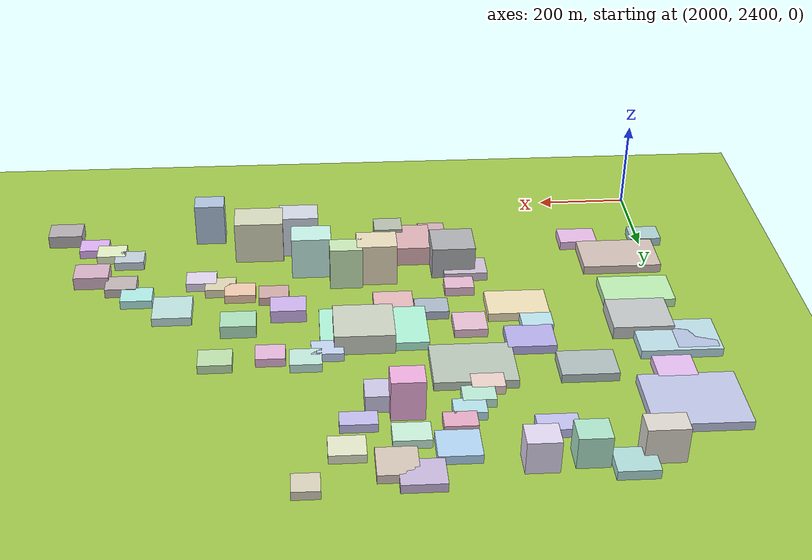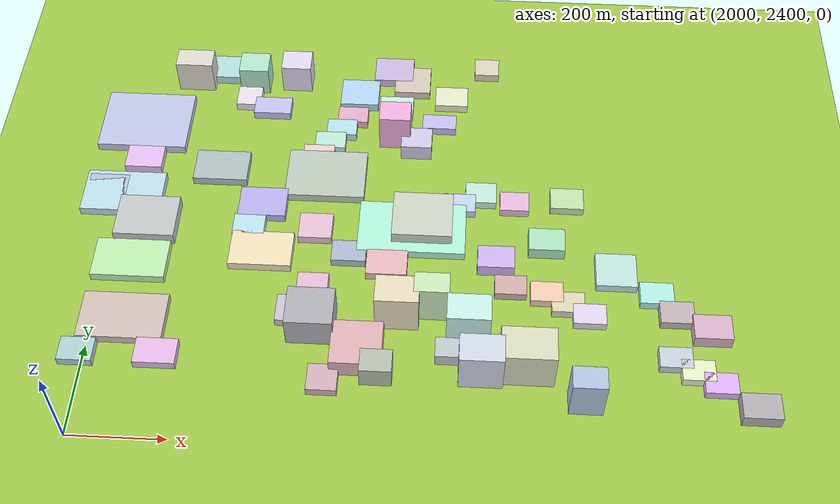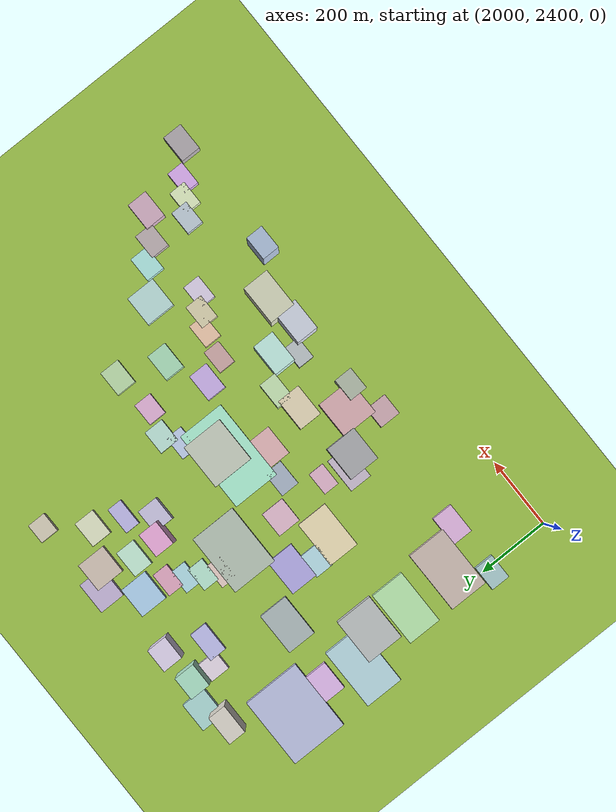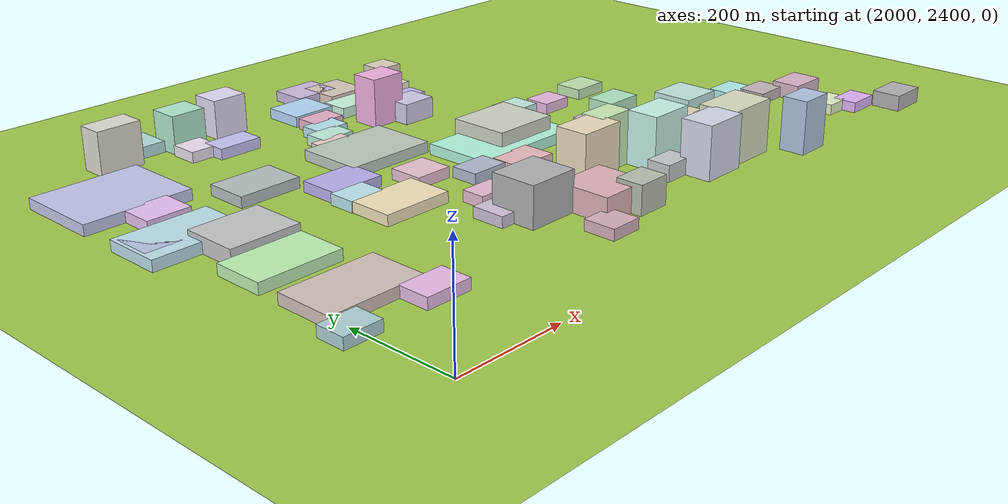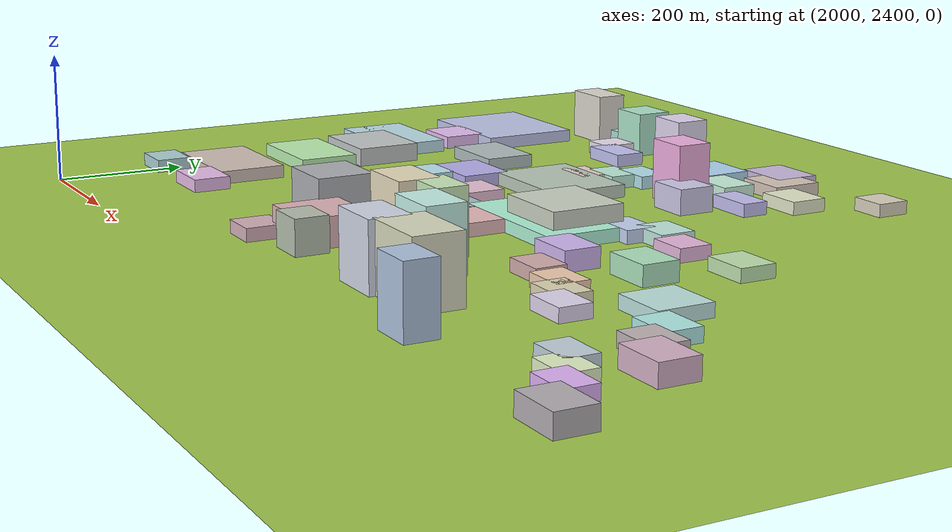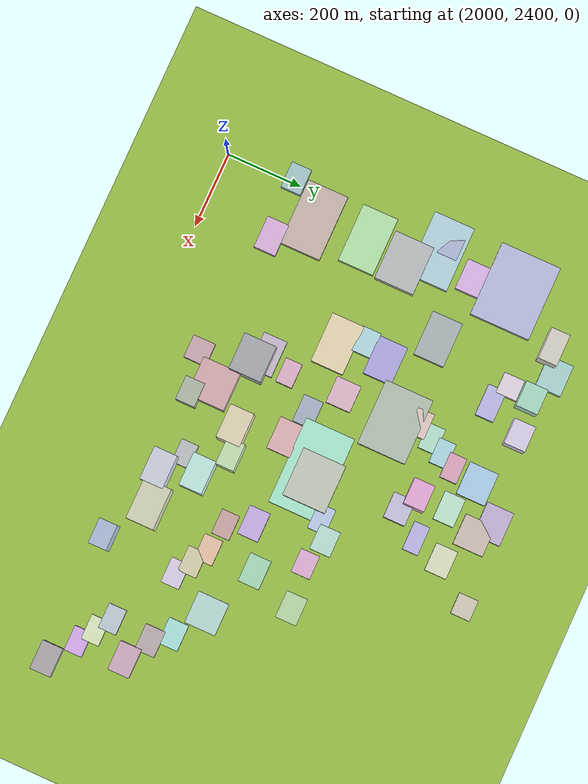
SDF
<sdf version="1.9">
 <world name="city_map">
  <model name="ground_plane">
   <static>1</static>
   <link name="link">
    <collision name="collision">
     <geometry><plane><normal>0 0 1</normal><size>11000 11000</size></plane></geometry>
    </collision>
    <visual name="visual">
     <geometry><plane><normal>0 0 1</normal><size>11000 11000</size></plane></geometry>
     <material>
      <ambient>0.551 0.712 0.210 1</ambient>
      <diffuse>0.651 0.812 0.310 1</diffuse>
      <specular>0.1 0.1 0.05 1</specular>
     </material>
    </visual>
   </link>
  </model>
  <model name="building_440611747">
   <static>1</static>
   <pose>2021.1025815786031 3198.5522960508947 10.0 0 0 0</pose>
   <link name="link">
    <collision name="collision">
     <geometry><box><size>197.5723558998394 159.24059999956341 20</size></box></geometry>
    </collision>
    <visual name="visual">
     <cast_shadows>false</cast_shadows>
     <geometry><box><size>197.5723558998394 159.24059999956341 20</size></box></geometry>
     <material>
      <ambient>0.681 0.703 0.843 1</ambient>
      <diffuse>0.781 0.803 0.943 1</diffuse>
      <specular>0.234 0.241 0.283 1</specular>
      <emissive>0.01 0.01 0.01 1</emissive>
     </material>
    </visual>
   </link>
  </model>
  <model name="building_433189715">
   <static>1</static>
   <pose>2639.7296116278594 2919.7608048342804 10.0 0 0 0</pose>
   <link name="link">
    <collision name="collision">
     <geometry><box><size>228.48471252296406 131.73479999991855 20</size></box></geometry>
    </collision>
    <visual name="visual">
     <cast_shadows>false</cast_shadows>
     <geometry><box><size>228.48471252296406 131.73479999991855 20</size></box></geometry>
     <material>
      <ambient>0.618 0.893 0.780 1</ambient>
      <diffuse>0.718 0.993 0.880 1</diffuse>
      <specular>0.215 0.298 0.264 1</specular>
      <emissive>0.01 0.01 0.01 1</emissive>
     </material>
    </visual>
   </link>
  </model>
  <model name="building_240721121">
   <static>1</static>
   <pose>2443.9631355852266 3059.673498067618 10.0 0 0 0</pose>
   <link name="link">
    <collision name="collision">
     <geometry><box><size>173.12924048401652 128.52690000028844 20</size></box></geometry>
    </collision>
    <visual name="visual">
     <cast_shadows>false</cast_shadows>
     <geometry><box><size>173.12924048401652 128.52690000028844 20</size></box></geometry>
     <material>
      <ambient>0.659 0.717 0.660 1</ambient>
      <diffuse>0.759 0.817 0.760 1</diffuse>
      <specular>0.228 0.245 0.228 1</specular>
      <emissive>0.01 0.01 0.01 1</emissive>
     </material>
    </visual>
   </link>
  </model>
  <model name="building_765505133">
   <static>1</static>
   <pose>2065.329270756325 2665.938776166225 10.0 0 0 0</pose>
   <link name="link">
    <collision name="collision">
     <geometry><box><size>174.52529999993516 108.52097290318989 20</size></box></geometry>
    </collision>
    <visual name="visual">
     <cast_shadows>false</cast_shadows>
     <geometry><box><size>174.52529999993516 108.52097290318989 20</size></box></geometry>
     <material>
      <ambient>0.747 0.680 0.644 1</ambient>
      <diffuse>0.847 0.780 0.744 1</diffuse>
      <specular>0.254 0.234 0.223 1</specular>
      <emissive>0.01 0.01 0.01 1</emissive>
     </material>
    </visual>
   </link>
  </model>
  <model name="building_233373308">
   <static>1</static>
   <pose>2006.5125984201939 2987.8699998156476 10.0 0 0 0</pose>
   <link name="link">
    <collision name="collision">
     <geometry><box><size>171.99449999954197 108.00716915777797 20</size></box></geometry>
    </collision>
    <visual name="visual">
     <cast_shadows>false</cast_shadows>
     <geometry><box><size>171.99449999954197 108.00716915777797 20</size></box></geometry>
     <material>
      <ambient>0.661 0.802 0.843 1</ambient>
      <diffuse>0.761 0.902 0.943 1</diffuse>
      <specular>0.228 0.270 0.283 1</specular>
      <emissive>0.01 0.01 0.01 1</emissive>
     </material>
    </visual>
   </link>
  </model>
  <model name="building_52770543">
   <static>1</static>
   <pose>2054.8442932073212 2809.9714088579435 10.0 0 0 0</pose>
   <link name="link">
    <collision name="collision">
     <geometry><box><size>154.56811779040694 94.84950000029357 20</size></box></geometry>
    </collision>
    <visual name="visual">
     <cast_shadows>false</cast_shadows>
     <geometry><box><size>154.56811779040694 94.84950000029357 20</size></box></geometry>
     <material>
      <ambient>0.667 0.869 0.627 1</ambient>
      <diffuse>0.767 0.969 0.727 1</diffuse>
      <specular>0.230 0.291 0.218 1</specular>
      <emissive>0.01 0.01 0.01 1</emissive>
     </material>
    </visual>
   </link>
  </model>
  <model name="building_142572939">
   <static>1</static>
   <pose>2661.4101324309618 2936.3021889163683 23.030599403451625 0 0 0</pose>
   <link name="link">
    <collision name="collision">
     <geometry><box><size>127.88761883979006 114.46319999998877 46.06119880690325</size></box></geometry>
    </collision>
    <visual name="visual">
     <cast_shadows>false</cast_shadows>
     <geometry><box><size>127.88761883979006 114.46319999998877 46.06119880690325</size></box></geometry>
     <material>
      <ambient>0.727 0.756 0.693 1</ambient>
      <diffuse>0.827 0.856 0.793 1</diffuse>
      <specular>0.248 0.257 0.238 1</specular>
      <emissive>0.01 0.01 0.01 1</emissive>
     </material>
    </visual>
   </link>
  </model>
  <model name="building_218203432">
   <static>1</static>
   <pose>2071.7927476553027 2916.532067912767 14.547962558986605 0 0 0</pose>
   <link name="link">
    <collision name="collision">
     <geometry><box><size>129.32610000016354 104.91038622711318 29.09592511797321</size></box></geometry>
    </collision>
    <visual name="visual">
     <cast_shadows>false</cast_shadows>
     <geometry><box><size>129.32610000016354 104.91038622711318 29.09592511797321</size></box></geometry>
     <material>
      <ambient>0.686 0.703 0.706 1</ambient>
      <diffuse>0.786 0.803 0.806 1</diffuse>
      <specular>0.236 0.241 0.242 1</specular>
      <emissive>0.01 0.01 0.01 1</emissive>
     </material>
    </visual>
   </link>
  </model>
  <model name="building_877774854">
   <static>1</static>
   <pose>2325.0134875804156 2848.2070413704073 10.0 0 0 0</pose>
   <link name="link">
    <collision name="collision">
     <geometry><box><size>132.11557564653737 86.90190000048403 20</size></box></geometry>
    </collision>
    <visual name="visual">
     <cast_shadows>false</cast_shadows>
     <geometry><box><size>132.11557564653737 86.90190000048403 20</size></box></geometry>
     <material>
      <ambient>0.877 0.817 0.660 1</ambient>
      <diffuse>0.977 0.917 0.760 1</diffuse>
      <specular>0.293 0.275 0.228 1</specular>
      <emissive>0.01 0.01 0.01 1</emissive>
     </material>
    </visual>
   </link>
  </model>
  <model name="building_999807764">
   <static>1</static>
   <pose>2545.0848512974344 2609.9748507605386 22.5 0 0 0</pose>
   <link name="link">
    <collision name="collision">
     <geometry><box><size>103.18559999991095 100.3134536221856 45.0</size></box></geometry>
    </collision>
    <visual name="visual">
     <cast_shadows>false</cast_shadows>
     <geometry><box><size>103.18559999991095 100.3134536221856 45.0</size></box></geometry>
     <material>
      <ambient>0.802 0.627 0.648 1</ambient>
      <diffuse>0.902 0.727 0.748 1</diffuse>
      <specular>0.271 0.218 0.224 1</specular>
      <emissive>0.01 0.01 0.01 1</emissive>
     </material>
    </visual>
   </link>
  </model>
  <model name="building_507207006">
   <static>1</static>
   <pose>2210.736748075368 3071.7509529611184 10.0 0 0 0</pose>
   <link name="link">
    <collision name="collision">
     <geometry><box><size>118.43446345562413 81.02999999969285 20</size></box></geometry>
    </collision>
    <visual name="visual">
     <cast_shadows>false</cast_shadows>
     <geometry><box><size>118.43446345562413 81.02999999969285 20</size></box></geometry>
     <material>
      <ambient>0.620 0.674 0.677 1</ambient>
      <diffuse>0.720 0.774 0.777 1</diffuse>
      <specular>0.216 0.232 0.233 1</specular>
      <emissive>0.01 0.01 0.01 1</emissive>
     </material>
    </visual>
   </link>
  </model>
  <model name="building_398476192">
   <static>1</static>
   <pose>2448.341518978277 2672.5574598121566 37.15671456053698 0 0 0</pose>
   <link name="link">
    <collision name="collision">
     <geometry><box><size>96.50339999990365 86.31847992660154 74.31342912107397</size></box></geometry>
    </collision>
    <visual name="visual">
     <cast_shadows>false</cast_shadows>
     <geometry><box><size>96.50339999990365 86.31847992660154 74.31342912107397</size></box></geometry>
     <material>
      <ambient>0.609 0.617 0.631 1</ambient>
      <diffuse>0.709 0.717 0.731 1</diffuse>
      <specular>0.213 0.215 0.219 1</specular>
      <emissive>0.01 0.01 0.01 1</emissive>
     </material>
    </visual>
   </link>
  </model>
  <model name="building_892319339">
   <static>1</static>
   <pose>2882.904034262728 2591.124476510062 49.5 0 0 0</pose>
   <link name="link">
    <collision name="collision">
     <geometry><box><size>108.92089593998533 72.99359999963428 99.0</size></box></geometry>
    </collision>
    <visual name="visual">
     <cast_shadows>false</cast_shadows>
     <geometry><box><size>108.92089593998533 72.99359999963428 99.0</size></box></geometry>
     <material>
      <ambient>0.779 0.790 0.678 1</ambient>
      <diffuse>0.879 0.890 0.778 1</diffuse>
      <specular>0.264 0.267 0.233 1</specular>
      <emissive>0.01 0.01 0.01 1</emissive>
     </material>
    </visual>
   </link>
  </model>
  <model name="building_639151474">
   <static>1</static>
   <pose>2313.9686368079538 2973.969334715789 10.0 0 0 0</pose>
   <link name="link">
    <collision name="collision">
     <geometry><box><size>102.53343533996022 76.3457999993733 20</size></box></geometry>
    </collision>
    <visual name="visual">
     <cast_shadows>false</cast_shadows>
     <geometry><box><size>102.53343533996022 76.3457999993733 20</size></box></geometry>
     <material>
      <ambient>0.646 0.617 0.859 1</ambient>
      <diffuse>0.746 0.717 0.959 1</diffuse>
      <specular>0.224 0.215 0.288 1</specular>
      <emissive>0.01 0.01 0.01 1</emissive>
     </material>
    </visual>
   </link>
  </model>
  <model name="building_354952649">
   <static>1</static>
   <pose>3069.1871280515857 2829.4343334186233 10.0 0 0 0</pose>
   <link name="link">
    <collision name="collision">
     <geometry><box><size>84.88464732057672 82.14000000004518 20</size></box></geometry>
    </collision>
    <visual name="visual">
     <cast_shadows>false</cast_shadows>
     <geometry><box><size>84.88464732057672 82.14000000004518 20</size></box></geometry>
     <material>
      <ambient>0.679 0.825 0.808 1</ambient>
      <diffuse>0.779 0.925 0.908 1</diffuse>
      <specular>0.234 0.278 0.272 1</specular>
      <emissive>0.01 0.01 0.01 1</emissive>
     </material>
    </visual>
   </link>
  </model>
  <model name="building_891922350">
   <static>1</static>
   <pose>2500.3131879932403 3308.432072423034 10.0 0 0 0</pose>
   <link name="link">
    <collision name="collision">
     <geometry><box><size>86.57999999987709 76.93863343203256 20</size></box></geometry>
    </collision>
    <visual name="visual">
     <cast_shadows>false</cast_shadows>
     <geometry><box><size>86.57999999987709 76.93863343203256 20</size></box></geometry>
     <material>
      <ambient>0.627 0.773 0.892 1</ambient>
      <diffuse>0.727 0.873 0.992 1</diffuse>
      <specular>0.218 0.262 0.298 1</specular>
      <emissive>0.01 0.01 0.01 1</emissive>
     </material>
    </visual>
   </link>
  </model>
  <model name="building_787136522">
   <static>1</static>
   <pose>2620.0870785486386 3353.145151308124 10.0 0 0 0</pose>
   <link name="link">
    <collision name="collision">
     <geometry><box><size>81.18539999993146 79.90101068106526 20</size></box></geometry>
    </collision>
    <visual name="visual">
     <cast_shadows>false</cast_shadows>
     <geometry><box><size>81.18539999993146 79.90101068106526 20</size></box></geometry>
     <material>
      <ambient>0.772 0.711 0.660 1</ambient>
      <diffuse>0.872 0.811 0.760 1</diffuse>
      <specular>0.262 0.243 0.228 1</specular>
      <emissive>0.01 0.01 0.01 1</emissive>
     </material>
    </visual>
   </link>
  </model>
  <model name="building_607999030">
   <static>1</static>
   <pose>2575.0287065678776 3385.5608271396363 10.0 0 0 0</pose>
   <link name="link">
    <collision name="collision">
     <geometry><box><size>88.88880000004207 71.72694712079284 20</size></box></geometry>
    </collision>
    <visual name="visual">
     <cast_shadows>false</cast_shadows>
     <geometry><box><size>88.88880000004207 71.72694712079284 20</size></box></geometry>
     <material>
      <ambient>0.722 0.656 0.806 1</ambient>
      <diffuse>0.822 0.756 0.906 1</diffuse>
      <specular>0.247 0.227 0.272 1</specular>
      <emissive>0.01 0.01 0.01 1</emissive>
     </material>
    </visual>
   </link>
  </model>
  <model name="building_978325490">
   <static>1</static>
   <pose>1969.7823153125971 2996.2764361823347 10.0 0 0 0</pose>
   <link name="link">
    <collision name="collision">
     <geometry><box><size>86.09160000047922 72.43461436716407 20</size></box></geometry>
    </collision>
    <visual name="visual">
     <cast_shadows>false</cast_shadows>
     <geometry><box><size>86.09160000047922 72.43461436716407 20</size></box></geometry>
     <material>
      <ambient>0.641 0.691 0.816 1</ambient>
      <diffuse>0.741 0.791 0.916 1</diffuse>
      <specular>0.222 0.237 0.275 1</specular>
      <emissive>0.01 0.01 0.01 1</emissive>
     </material>
    </visual>
   </link>
  </model>
  <model name="building_843938436">
   <static>1</static>
   <pose>2421.875062021115 2700.7712708513304 10.0 0 0 0</pose>
   <link name="link">
    <collision name="collision">
     <geometry><box><size>96.9029999998412 62.89392078741575 20</size></box></geometry>
    </collision>
    <visual name="visual">
     <cast_shadows>false</cast_shadows>
     <geometry><box><size>96.9029999998412 62.89392078741575 20</size></box></geometry>
     <material>
      <ambient>0.740 0.688 0.765 1</ambient>
      <diffuse>0.840 0.788 0.865 1</diffuse>
      <specular>0.252 0.236 0.260 1</specular>
      <emissive>0.01 0.01 0.01 1</emissive>
     </material>
    </visual>
   </link>
  </model>
  <model name="building_784632649">
   <static>1</static>
   <pose>2175.9330081784688 3373.636700189338 10.521835499414411 0 0 0</pose>
   <link name="link">
    <collision name="collision">
     <geometry><box><size>83.18103066838933 68.07629999974552 21.043670998828823</size></box></geometry>
    </collision>
    <visual name="visual">
     <cast_shadows>false</cast_shadows>
     <geometry><box><size>83.18103066838933 68.07629999974552 21.043670998828823</size></box></geometry>
     <material>
      <ambient>0.615 0.802 0.788 1</ambient>
      <diffuse>0.715 0.902 0.888 1</diffuse>
      <specular>0.215 0.270 0.266 1</specular>
      <emissive>0.01 0.01 0.01 1</emissive>
     </material>
    </visual>
   </link>
  </model>
  <model name="building_659583168">
   <static>1</static>
   <pose>2620.800996828781 2704.312702038661 49.5 0 0 0</pose>
   <link name="link">
    <collision name="collision">
     <geometry><box><size>88.85550000044162 63.197637588316915 99.0</size></box></geometry>
    </collision>
    <visual name="visual">
     <cast_shadows>false</cast_shadows>
     <geometry><box><size>88.85550000044162 63.197637588316915 99.0</size></box></geometry>
     <material>
      <ambient>0.845 0.796 0.669 1</ambient>
      <diffuse>0.945 0.896 0.769 1</diffuse>
      <specular>0.284 0.269 0.231 1</specular>
      <emissive>0.01 0.01 0.01 1</emissive>
     </material>
    </visual>
   </link>
  </model>
  <model name="building_970933417">
   <static>1</static>
   <pose>2035.7806257895152 3092.2352029249687 10.0 0 0 0</pose>
   <link name="link">
    <collision name="collision">
     <geometry><box><size>81.14744496490628 68.13179999960539 20</size></box></geometry>
    </collision>
    <visual name="visual">
     <cast_shadows>false</cast_shadows>
     <geometry><box><size>81.14744496490628 68.13179999960539 20</size></box></geometry>
     <material>
      <ambient>0.829 0.674 0.884 1</ambient>
      <diffuse>0.929 0.774 0.984 1</diffuse>
      <specular>0.279 0.232 0.295 1</specular>
      <emissive>0.01 0.01 0.01 1</emissive>
     </material>
    </visual>
   </link>
  </model>
  <model name="building_571289400">
   <static>1</static>
   <pose>2792.187148173389 2576.083286826935 49.5 0 0 0</pose>
   <link name="link">
    <collision name="collision">
     <geometry><box><size>88.12289999976741 61.329388666007254 99.0</size></box></geometry>
    </collision>
    <visual name="visual">
     <cast_shadows>false</cast_shadows>
     <geometry><box><size>88.12289999976741 61.329388666007254 99.0</size></box></geometry>
     <material>
      <ambient>0.757 0.781 0.841 1</ambient>
      <diffuse>0.857 0.881 0.941 1</diffuse>
      <specular>0.257 0.264 0.282 1</specular>
      <emissive>0.01 0.01 0.01 1</emissive>
     </material>
    </visual>
   </link>
  </model>
  <model name="building_898796080">
   <static>1</static>
   <pose>2591.490289674646 2825.5765048641993 10.0 0 0 0</pose>
   <link name="link">
    <collision name="collision">
     <geometry><box><size>85.55879999977378 62.75730532952473 20</size></box></geometry>
    </collision>
    <visual name="visual">
     <cast_shadows>false</cast_shadows>
     <geometry><box><size>85.55879999977378 62.75730532952473 20</size></box></geometry>
     <material>
      <ambient>0.840 0.656 0.668 1</ambient>
      <diffuse>0.940 0.756 0.768 1</diffuse>
      <specular>0.282 0.227 0.231 1</specular>
      <emissive>0.01 0.01 0.01 1</emissive>
     </material>
    </visual>
   </link>
  </model>
  <model name="building_44557609">
   <static>1</static>
   <pose>2765.3982964971833 2669.1625125466885 49.5 0 0 0</pose>
   <link name="link">
    <collision name="collision">
     <geometry><box><size>88.07366157788101 60.47280000001365 99.0</size></box></geometry>
    </collision>
    <visual name="visual">
     <cast_shadows>false</cast_shadows>
     <geometry><box><size>88.07366157788101 60.47280000001365 99.0</size></box></geometry>
     <material>
      <ambient>0.706 0.880 0.841 1</ambient>
      <diffuse>0.806 0.980 0.941 1</diffuse>
      <specular>0.242 0.294 0.282 1</specular>
      <emissive>0.01 0.01 0.01 1</emissive>
     </material>
    </visual>
   </link>
  </model>
  <model name="building_2308351">
   <static>1</static>
   <pose>2146.310869549892 2585.628138694475 10.0 0 0 0</pose>
   <link name="link">
    <collision name="collision">
     <geometry><box><size>84.74703620437526 58.05300000012892 20</size></box></geometry>
    </collision>
    <visual name="visual">
     <cast_shadows>false</cast_shadows>
     <geometry><box><size>84.74703620437526 58.05300000012892 20</size></box></geometry>
     <material>
      <ambient>0.835 0.662 0.839 1</ambient>
      <diffuse>0.935 0.762 0.939 1</diffuse>
      <specular>0.280 0.229 0.282 1</specular>
      <emissive>0.01 0.01 0.01 1</emissive>
     </material>
    </visual>
   </link>
  </model>
  <model name="building_609633486">
   <static>1</static>
   <pose>2434.1770433921934 2913.9179762736994 10.0 0 0 0</pose>
   <link name="link">
    <collision name="collision">
     <geometry><box><size>70.90680000048621 65.37516156024863 20</size></box></geometry>
    </collision>
    <visual name="visual">
     <cast_shadows>false</cast_shadows>
     <geometry><box><size>70.90680000048621 65.37516156024863 20</size></box></geometry>
     <material>
      <ambient>0.841 0.683 0.763 1</ambient>
      <diffuse>0.941 0.783 0.863 1</diffuse>
      <specular>0.282 0.235 0.259 1</specular>
      <emissive>0.01 0.01 0.01 1</emissive>
     </material>
    </visual>
   </link>
  </model>
  <model name="building_930341604">
   <static>1</static>
   <pose>3255.455934655264 2692.3824317924427 15.0 0 0 0</pose>
   <link name="link">
    <collision name="collision">
     <geometry><box><size>77.22527201916502 56.88749999991671 30.0</size></box></geometry>
    </collision>
    <visual name="visual">
     <cast_shadows>false</cast_shadows>
     <geometry><box><size>77.22527201916502 56.88749999991671 30.0</size></box></geometry>
     <material>
      <ambient>0.770 0.624 0.709 1</ambient>
      <diffuse>0.870 0.724 0.809 1</diffuse>
      <specular>0.261 0.217 0.243 1</specular>
      <emissive>0.01 0.01 0.01 1</emissive>
     </material>
    </visual>
   </link>
  </model>
  <model name="building_541868812">
   <static>1</static>
   <pose>2925.6475615582126 2894.4828360057627 15.0 0 0 0</pose>
   <link name="link">
    <collision name="collision">
     <geometry><box><size>76.29030000030212 56.1411501408804 30.0</size></box></geometry>
    </collision>
    <visual name="visual">
     <cast_shadows>false</cast_shadows>
     <geometry><box><size>76.29030000030212 56.1411501408804 30.0</size></box></geometry>
     <material>
      <ambient>0.609 0.825 0.679 1</ambient>
      <diffuse>0.709 0.925 0.779 1</diffuse>
      <specular>0.213 0.278 0.234 1</specular>
      <emissive>0.01 0.01 0.01 1</emissive>
     </material>
    </visual>
   </link>
  </model>
  <model name="building_823351484">
   <static>1</static>
   <pose>2711.962833078235 3304.6631821596206 10.0 0 0 0</pose>
   <link name="link">
    <collision name="collision">
     <geometry><box><size>73.77060000003866 57.67533765864635 20</size></box></geometry>
    </collision>
    <visual name="visual">
     <cast_shadows>false</cast_shadows>
     <geometry><box><size>73.77060000003866 57.67533765864635 20</size></box></geometry>
     <material>
      <ambient>0.831 0.849 0.725 1</ambient>
      <diffuse>0.931 0.949 0.825 1</diffuse>
      <specular>0.279 0.285 0.248 1</specular>
      <emissive>0.01 0.01 0.01 1</emissive>
     </material>
    </visual>
   </link>
  </model>
  <model name="building_138306197">
   <static>1</static>
   <pose>3332.944648379341 2515.7569111712983 15.0 0 0 0</pose>
   <link name="link">
    <collision name="collision">
     <geometry><box><size>76.59349396253477 55.28910000016651 30.0</size></box></geometry>
    </collision>
    <visual name="visual">
     <cast_shadows>false</cast_shadows>
     <geometry><box><size>76.59349396253477 55.28910000016651 30.0</size></box></geometry>
     <material>
      <ambient>0.631 0.608 0.627 1</ambient>
      <diffuse>0.731 0.708 0.727 1</diffuse>
      <specular>0.219 0.212 0.218 1</specular>
      <emissive>0.01 0.01 0.01 1</emissive>
     </material>
    </visual>
   </link>
  </model>
  <model name="building_247893994">
   <static>1</static>
   <pose>2819.2361457912884 2843.9299158555473 15.0 0 0 0</pose>
   <link name="link">
    <collision name="collision">
     <geometry><box><size>76.98960000058719 54.90644070178465 30.0</size></box></geometry>
    </collision>
    <visual name="visual">
     <cast_shadows>false</cast_shadows>
     <geometry><box><size>76.98960000058719 54.90644070178465 30.0</size></box></geometry>
     <material>
      <ambient>0.744 0.640 0.876 1</ambient>
      <diffuse>0.844 0.740 0.976 1</diffuse>
      <specular>0.253 0.222 0.293 1</specular>
      <emissive>0.01 0.01 0.01 1</emissive>
     </material>
    </visual>
   </link>
  </model>
  <model name="building_420393484">
   <static>1</static>
   <pose>2586.507628754612 3270.356211441398 10.0 0 0 0</pose>
   <link name="link">
    <collision name="collision">
     <geometry><box><size>76.22369999952383 55.05027304293039 20</size></box></geometry>
    </collision>
    <visual name="visual">
     <cast_shadows>false</cast_shadows>
     <geometry><box><size>76.22369999952383 55.05027304293039 20</size></box></geometry>
     <material>
      <ambient>0.718 0.881 0.791 1</ambient>
      <diffuse>0.818 0.981 0.891 1</diffuse>
      <specular>0.245 0.294 0.267 1</specular>
      <emissive>0.01 0.01 0.01 1</emissive>
     </material>
    </visual>
   </link>
  </model>
  <model name="building_924650362">
   <static>1</static>
   <pose>2117.020192153888 3340.6102126358987 40.33029779989859 0 0 0</pose>
   <link name="link">
    <collision name="collision">
     <geometry><box><size>83.20851516429215 49.661399999862965 80.66059559979718</size></box></geometry>
    </collision>
    <visual name="visual">
     <cast_shadows>false</cast_shadows>
     <geometry><box><size>83.20851516429215 49.661399999862965 80.66059559979718</size></box></geometry>
     <material>
      <ambient>0.803 0.784 0.743 1</ambient>
      <diffuse>0.903 0.884 0.843 1</diffuse>
      <specular>0.271 0.265 0.253 1</specular>
      <emissive>0.01 0.01 0.01 1</emissive>
     </material>
    </visual>
   </link>
  </model>
  <model name="building_494987376">
   <static>1</static>
   <pose>2302.834285355172 3257.0741859451828 10.0 0 0 0</pose>
   <link name="link">
    <collision name="collision">
     <geometry><box><size>83.4597279664778 48.56249999964035 20</size></box></geometry>
    </collision>
    <visual name="visual">
     <cast_shadows>false</cast_shadows>
     <geometry><box><size>83.4597279664778 48.56249999964035 20</size></box></geometry>
     <material>
      <ambient>0.695 0.692 0.888 1</ambient>
      <diffuse>0.795 0.792 0.988 1</diffuse>
      <specular>0.238 0.238 0.296 1</specular>
      <emissive>0.01 0.01 0.01 1</emissive>
     </material>
    </visual>
   </link>
  </model>
  <model name="building_343760749">
   <static>1</static>
   <pose>2971.0373675541637 3014.9156542373576 10.0 0 0 0</pose>
   <link name="link">
    <collision name="collision">
     <geometry><box><size>71.30710077830501 55.733100000622926 20</size></box></geometry>
    </collision>
    <visual name="visual">
     <cast_shadows>false</cast_shadows>
     <geometry><box><size>71.30710077830501 55.733100000622926 20</size></box></geometry>
     <material>
      <ambient>0.682 0.822 0.614 1</ambient>
      <diffuse>0.782 0.922 0.714 1</diffuse>
      <specular>0.235 0.277 0.214 1</specular>
      <emissive>0.01 0.01 0.01 1</emissive>
     </material>
    </visual>
   </link>
  </model>
  <model name="building_906449329">
   <static>1</static>
   <pose>2638.0263583051883 3157.363262833023 19.650058536630425 0 0 0</pose>
   <link name="link">
    <collision name="collision">
     <geometry><box><size>67.70068189278798 57.45359999943389 39.30011707326085</size></box></geometry>
    </collision>
    <visual name="visual">
     <cast_shadows>false</cast_shadows>
     <geometry><box><size>67.70068189278798 57.45359999943389 39.30011707326085</size></box></geometry>
     <material>
      <ambient>0.741 0.722 0.841 1</ambient>
      <diffuse>0.841 0.822 0.941 1</diffuse>
      <specular>0.252 0.247 0.282 1</specular>
      <emissive>0.01 0.01 0.01 1</emissive>
     </material>
    </visual>
   </link>
  </model>
  <model name="building_218186878">
   <static>1</static>
   <pose>2254.1556649982626 3342.550287376286 35.55328591505598 0 0 0</pose>
   <link name="link">
    <collision name="collision">
     <geometry><box><size>66.42919341135116 57.98640000013933 71.10657183011196</size></box></geometry>
    </collision>
    <visual name="visual">
     <cast_shadows>false</cast_shadows>
     <geometry><box><size>66.42919341135116 57.98640000013933 71.10657183011196</size></box></geometry>
     <material>
      <ambient>0.612 0.835 0.727 1</ambient>
      <diffuse>0.712 0.935 0.827 1</diffuse>
      <specular>0.214 0.280 0.248 1</specular>
      <emissive>0.01 0.01 0.01 1</emissive>
     </material>
    </visual>
   </link>
  </model>
  <model name="building_226000183">
   <static>1</static>
   <pose>2510.2857720700845 2850.916494306333 10.0 0 0 0</pose>
   <link name="link">
    <collision name="collision">
     <geometry><box><size>72.47190000063597 52.375123365187974 20</size></box></geometry>
    </collision>
    <visual name="visual">
     <cast_shadows>false</cast_shadows>
     <geometry><box><size>72.47190000063597 52.375123365187974 20</size></box></geometry>
     <material>
      <ambient>0.605 0.656 0.730 1</ambient>
      <diffuse>0.705 0.756 0.830 1</diffuse>
      <specular>0.212 0.227 0.249 1</specular>
      <emissive>0.01 0.01 0.01 1</emissive>
     </material>
    </visual>
   </link>
  </model>
  <model name="building_449353178">
   <static>1</static>
   <pose>2351.1173403393746 3352.75603977631 36.37711517453107 0 0 0</pose>
   <link name="link">
    <collision name="collision">
     <geometry><box><size>67.15792479331215 56.28810000001039 72.75423034906214</size></box></geometry>
    </collision>
    <visual name="visual">
     <cast_shadows>false</cast_shadows>
     <geometry><box><size>67.15792479331215 56.28810000001039 72.75423034906214</size></box></geometry>
     <material>
      <ambient>0.819 0.780 0.883 1</ambient>
      <diffuse>0.919 0.880 0.983 1</diffuse>
      <specular>0.276 0.264 0.295 1</specular>
      <emissive>0.01 0.01 0.01 1</emissive>
     </material>
    </visual>
   </link>
  </model>
  <model name="building_214284687">
   <static>1</static>
   <pose>2588.890866225791 3186.4855411650947 46.289308977182756 0 0 0</pose>
   <link name="link">
    <collision name="collision">
     <geometry><box><size>69.25945564430481 54.489900000291414 92.57861795436551</size></box></geometry>
    </collision>
    <visual name="visual">
     <cast_shadows>false</cast_shadows>
     <geometry><box><size>69.25945564430481 54.489900000291414 92.57861795436551</size></box></geometry>
     <material>
      <ambient>0.877 0.617 0.813 1</ambient>
      <diffuse>0.977 0.717 0.913 1</diffuse>
      <specular>0.293 0.215 0.274 1</specular>
      <emissive>0.01 0.01 0.01 1</emissive>
     </material>
    </visual>
   </link>
  </model>
  <model name="building_897178265">
   <static>1</static>
   <pose>1987.975690630596 2582.1375690090285 10.0 0 0 0</pose>
   <link name="link">
    <collision name="collision">
     <geometry><box><size>69.70670007903009 53.62409999963802 20</size></box></geometry>
    </collision>
    <visual name="visual">
     <cast_shadows>false</cast_shadows>
     <geometry><box><size>69.70670007903009 53.62409999963802 20</size></box></geometry>
     <material>
      <ambient>0.603 0.746 0.755 1</ambient>
      <diffuse>0.703 0.846 0.855 1</diffuse>
      <specular>0.211 0.254 0.256 1</specular>
      <emissive>0.01 0.01 0.01 1</emissive>
     </material>
    </visual>
   </link>
  </model>
  <model name="building_107459218">
   <static>1</static>
   <pose>2784.909520881961 3022.0212459195736 10.0 0 0 0</pose>
   <link name="link">
    <collision name="collision">
     <geometry><box><size>66.73717013897145 54.789599999850225 20</size></box></geometry>
    </collision>
    <visual name="visual">
     <cast_shadows>false</cast_shadows>
     <geometry><box><size>66.73717013897145 54.789599999850225 20</size></box></geometry>
     <material>
      <ambient>0.690 0.851 0.802 1</ambient>
      <diffuse>0.790 0.951 0.902 1</diffuse>
      <specular>0.237 0.285 0.271 1</specular>
      <emissive>0.01 0.01 0.01 1</emissive>
     </material>
    </visual>
   </link>
  </model>
  <model name="building_353283634">
   <static>1</static>
   <pose>3187.8460385637504 2729.6870466632163 10.5 0 0 0</pose>
   <link name="link">
    <collision name="collision">
     <geometry><box><size>69.09749999984882 52.6261812397863 21.0</size></box></geometry>
    </collision>
    <visual name="visual">
     <cast_shadows>false</cast_shadows>
     <geometry><box><size>69.09749999984882 52.6261812397863 21.0</size></box></geometry>
     <material>
      <ambient>0.685 0.634 0.642 1</ambient>
      <diffuse>0.785 0.734 0.742 1</diffuse>
      <specular>0.235 0.220 0.222 1</specular>
      <emissive>0.01 0.01 0.01 1</emissive>
     </material>
    </visual>
   </link>
  </model>
  <model name="building_553146317">
   <static>1</static>
   <pose>3150.058009802996 2775.6327717592862 10.0 0 0 0</pose>
   <link name="link">
    <collision name="collision">
     <geometry><box><size>69.26400000021715 52.22065106720512 20</size></box></geometry>
    </collision>
    <visual name="visual">
     <cast_shadows>false</cast_shadows>
     <geometry><box><size>69.26400000021715 52.22065106720512 20</size></box></geometry>
     <material>
      <ambient>0.624 0.862 0.840 1</ambient>
      <diffuse>0.724 0.962 0.940 1</diffuse>
      <specular>0.217 0.289 0.282 1</specular>
      <emissive>0.01 0.01 0.01 1</emissive>
     </material>
    </visual>
   </link>
  </model>
  <model name="building_395142920">
   <static>1</static>
   <pose>2482.43844257722 2541.8110056640535 10.0 0 0 0</pose>
   <link name="link">
    <collision name="collision">
     <geometry><box><size>60.76140000023145 59.31805471502809 20</size></box></geometry>
    </collision>
    <visual name="visual">
     <cast_shadows>false</cast_shadows>
     <geometry><box><size>60.76140000023145 59.31805471502809 20</size></box></geometry>
     <material>
      <ambient>0.761 0.616 0.652 1</ambient>
      <diffuse>0.861 0.716 0.752 1</diffuse>
      <specular>0.258 0.215 0.226 1</specular>
      <emissive>0.01 0.01 0.01 1</emissive>
     </material>
    </visual>
   </link>
  </model>
  <model name="building_628357498">
   <static>1</static>
   <pose>2291.1800719481776 2912.248057605683 10.0 0 0 0</pose>
   <link name="link">
    <collision name="collision">
     <geometry><box><size>67.39342964984831 50.838000000204886 20</size></box></geometry>
    </collision>
    <visual name="visual">
     <cast_shadows>false</cast_shadows>
     <geometry><box><size>67.39342964984831 50.838000000204886 20</size></box></geometry>
     <material>
      <ambient>0.661 0.827 0.868 1</ambient>
      <diffuse>0.761 0.927 0.968 1</diffuse>
      <specular>0.228 0.278 0.291 1</specular>
      <emissive>0.01 0.01 0.01 1</emissive>
     </material>
    </visual>
   </link>
  </model>
  <model name="building_152878741">
   <static>1</static>
   <pose>2689.5713781593236 2723.08331464054 49.5 0 0 0</pose>
   <link name="link">
    <collision name="collision">
     <geometry><box><size>71.91894570299024 47.5079999999366 99.0</size></box></geometry>
    </collision>
    <visual name="visual">
     <cast_shadows>false</cast_shadows>
     <geometry><box><size>71.91894570299024 47.5079999999366 99.0</size></box></geometry>
     <material>
      <ambient>0.723 0.851 0.651 1</ambient>
      <diffuse>0.823 0.951 0.751 1</diffuse>
      <specular>0.247 0.285 0.225 1</specular>
      <emissive>0.01 0.01 0.01 1</emissive>
     </material>
    </visual>
   </link>
  </model>
  <model name="building_563592610">
   <static>1</static>
   <pose>2968.0093399385983 2744.1162135522636 10.0 0 0 0</pose>
   <link name="link">
    <collision name="collision">
     <geometry><box><size>67.42139999997931 49.223777364262894 20</size></box></geometry>
    </collision>
    <visual name="visual">
     <cast_shadows>false</cast_shadows>
     <geometry><box><size>67.42139999997931 49.223777364262894 20</size></box></geometry>
     <material>
      <ambient>0.806 0.773 0.634 1</ambient>
      <diffuse>0.906 0.873 0.734 1</diffuse>
      <specular>0.272 0.262 0.220 1</specular>
      <emissive>0.01 0.01 0.01 1</emissive>
     </material>
    </visual>
   </link>
  </model>
  <model name="building_798891094">
   <static>1</static>
   <pose>2924.5997922171887 2767.908592006882 10.0 0 0 0</pose>
   <link name="link">
    <collision name="collision">
     <geometry><box><size>67.29930000012985 48.81847462445838 20</size></box></geometry>
    </collision>
    <visual name="visual">
     <cast_shadows>false</cast_shadows>
     <geometry><box><size>67.29930000012985 48.81847462445838 20</size></box></geometry>
     <material>
      <ambient>0.882 0.731 0.616 1</ambient>
      <diffuse>0.982 0.831 0.716 1</diffuse>
      <specular>0.295 0.249 0.215 1</specular>
      <emissive>0.01 0.01 0.01 1</emissive>
     </material>
    </visual>
   </link>
  </model>
  <model name="building_541804644">
   <static>1</static>
   <pose>2586.877980322038 2565.3412827186776 26.54033825925691 0 0 0</pose>
   <link name="link">
    <collision name="collision">
     <geometry><box><size>64.14690000035961 51.1629801817511 53.08067651851382</size></box></geometry>
    </collision>
    <visual name="visual">
     <cast_shadows>false</cast_shadows>
     <geometry><box><size>64.14690000035961 51.1629801817511 53.08067651851382</size></box></geometry>
     <material>
      <ambient>0.639 0.681 0.608 1</ambient>
      <diffuse>0.739 0.781 0.708 1</diffuse>
      <specular>0.222 0.234 0.213 1</specular>
      <emissive>0.01 0.01 0.01 1</emissive>
     </material>
    </visual>
   </link>
  </model>
  <model name="building_884022493">
   <static>1</static>
   <pose>3011.1313309794577 2717.396072680197 10.0 0 0 0</pose>
   <link name="link">
    <collision name="collision">
     <geometry><box><size>67.14389999989123 48.40050320119362 20</size></box></geometry>
    </collision>
    <visual name="visual">
     <cast_shadows>false</cast_shadows>
     <geometry><box><size>67.14389999989123 48.40050320119362 20</size></box></geometry>
     <material>
      <ambient>0.816 0.773 0.873 1</ambient>
      <diffuse>0.916 0.873 0.973 1</diffuse>
      <specular>0.275 0.262 0.292 1</specular>
      <emissive>0.01 0.01 0.01 1</emissive>
     </material>
    </visual>
   </link>
  </model>
  <model name="building_196289299">
   <static>1</static>
   <pose>2996.913884405855 2520.040596829859 49.5 0 0 0</pose>
   <link name="link">
    <collision name="collision">
     <geometry><box><size>67.31118226598805 48.22949999969239 99.0</size></box></geometry>
    </collision>
    <visual name="visual">
     <cast_shadows>false</cast_shadows>
     <geometry><box><size>67.31118226598805 48.22949999969239 99.0</size></box></geometry>
     <material>
      <ambient>0.616 0.695 0.806 1</ambient>
      <diffuse>0.716 0.795 0.906 1</diffuse>
      <specular>0.215 0.238 0.272 1</specular>
      <emissive>0.01 0.01 0.01 1</emissive>
     </material>
    </visual>
   </link>
  </model>
  <model name="building_295005468">
   <static>1</static>
   <pose>2739.4576333741284 2992.047075188429 10.0 0 0 0</pose>
   <link name="link">
    <collision name="collision">
     <geometry><box><size>67.85134935088377 47.41920000047628 20</size></box></geometry>
    </collision>
    <visual name="visual">
     <cast_shadows>false</cast_shadows>
     <geometry><box><size>67.85134935088377 47.41920000047628 20</size></box></geometry>
     <material>
      <ambient>0.699 0.765 0.889 1</ambient>
      <diffuse>0.799 0.865 0.989 1</diffuse>
      <specular>0.240 0.259 0.297 1</specular>
      <emissive>0.01 0.01 0.01 1</emissive>
     </material>
    </visual>
   </link>
  </model>
  <model name="building_541119616">
   <static>1</static>
   <pose>2686.386531987244 3225.029823492709 10.0 0 0 0</pose>
   <link name="link">
    <collision name="collision">
     <geometry><box><size>75.835199999716 41.42305341234095 20</size></box></geometry>
    </collision>
    <visual name="visual">
     <cast_shadows>false</cast_shadows>
     <geometry><box><size>75.835199999716 41.42305341234095 20</size></box></geometry>
     <material>
      <ambient>0.698 0.679 0.876 1</ambient>
      <diffuse>0.798 0.779 0.976 1</diffuse>
      <specular>0.239 0.234 0.293 1</specular>
      <emissive>0.01 0.01 0.01 1</emissive>
     </material>
    </visual>
   </link>
  </model>
  <model name="building_872844933">
   <static>1</static>
   <pose>2857.426565104976 3001.3245342220976 10.0 0 0 0</pose>
   <link name="link">
    <collision name="collision">
     <geometry><box><size>62.458047034448626 50.29410000015844 20</size></box></geometry>
    </collision>
    <visual name="visual">
     <cast_shadows>false</cast_shadows>
     <geometry><box><size>62.458047034448626 50.29410000015844 20</size></box></geometry>
     <material>
      <ambient>0.838 0.649 0.800 1</ambient>
      <diffuse>0.938 0.749 0.900 1</diffuse>
      <specular>0.281 0.225 0.270 1</specular>
      <emissive>0.01 0.01 0.01 1</emissive>
     </material>
    </visual>
   </link>
  </model>
  <model name="building_42475568">
   <static>1</static>
   <pose>3178.0934712126896 2622.9326466474513 10.0 0 0 0</pose>
   <link name="link">
    <collision name="collision">
     <geometry><box><size>66.2447999996374 47.31455493104789 20</size></box></geometry>
    </collision>
    <visual name="visual">
     <cast_shadows>false</cast_shadows>
     <geometry><box><size>66.2447999996374 47.31455493104789 20</size></box></geometry>
     <material>
      <ambient>0.696 0.752 0.797 1</ambient>
      <diffuse>0.796 0.852 0.897 1</diffuse>
      <specular>0.239 0.256 0.269 1</specular>
      <emissive>0.01 0.01 0.01 1</emissive>
     </material>
    </visual>
   </link>
  </model>
  <model name="building_978585552">
   <static>1</static>
   <pose>2444.2408487172634 3159.027850884356 10.0 0 0 0</pose>
   <link name="link">
    <collision name="collision">
     <geometry><box><size>67.66008184736154 46.26479999960509 20</size></box></geometry>
    </collision>
    <visual name="visual">
     <cast_shadows>false</cast_shadows>
     <geometry><box><size>67.66008184736154 46.26479999960509 20</size></box></geometry>
     <material>
      <ambient>0.669 0.859 0.779 1</ambient>
      <diffuse>0.769 0.959 0.879 1</diffuse>
      <specular>0.231 0.288 0.264 1</specular>
      <emissive>0.01 0.01 0.01 1</emissive>
     </material>
    </visual>
   </link>
  </model>
  <model name="building_83788642">
   <static>1</static>
   <pose>3220.5598328668616 2595.5987097800858 10.0 0 0 0</pose>
   <link name="link">
    <collision name="collision">
     <geometry><box><size>65.91179999968944 47.22031121025531 20</size></box></geometry>
    </collision>
    <visual name="visual">
     <cast_shadows>false</cast_shadows>
     <geometry><box><size>65.91179999968944 47.22031121025531 20</size></box></geometry>
     <material>
      <ambient>0.823 0.883 0.707 1</ambient>
      <diffuse>0.923 0.983 0.807 1</diffuse>
      <specular>0.277 0.295 0.242 1</specular>
      <emissive>0.01 0.01 0.01 1</emissive>
     </material>
    </visual>
   </link>
  </model>
  <model name="building_819848182">
   <static>1</static>
   <pose>2850.4927291640106 2780.849457568359 10.0 0 0 0</pose>
   <link name="link">
    <collision name="collision">
     <geometry><box><size>65.57954018535055 47.408100000346565 20</size></box></geometry>
    </collision>
    <visual name="visual">
     <cast_shadows>false</cast_shadows>
     <geometry><box><size>65.57954018535055 47.408100000346565 20</size></box></geometry>
     <material>
      <ambient>0.759 0.603 0.602 1</ambient>
      <diffuse>0.859 0.703 0.702 1</diffuse>
      <specular>0.258 0.211 0.211 1</specular>
      <emissive>0.01 0.01 0.01 1</emissive>
     </material>
    </visual>
   </link>
  </model>
  <model name="building_361925328">
   <static>1</static>
   <pose>3262.7406676517276 2568.6183727786843 10.0 0 0 0</pose>
   <link name="link">
    <collision name="collision">
     <geometry><box><size>65.72309999985038 46.937045965071626 20</size></box></geometry>
    </collision>
    <visual name="visual">
     <cast_shadows>false</cast_shadows>
     <geometry><box><size>65.72309999985038 46.937045965071626 20</size></box></geometry>
     <material>
      <ambient>0.807 0.626 0.897 1</ambient>
      <diffuse>0.907 0.726 0.997 1</diffuse>
      <specular>0.272 0.218 0.299 1</specular>
      <emissive>0.01 0.01 0.01 1</emissive>
     </material>
    </visual>
   </link>
  </model>
  <model name="building_148187644">
   <static>1</static>
   <pose>2421.3438985990297 3119.4891588683895 10.0 0 0 0</pose>
   <link name="link">
    <collision name="collision">
     <geometry><box><size>68.03187494742089 44.89950000021281 20</size></box></geometry>
    </collision>
    <visual name="visual">
     <cast_shadows>false</cast_shadows>
     <geometry><box><size>68.03187494742089 44.89950000021281 20</size></box></geometry>
     <material>
      <ambient>0.858 0.758 0.728 1</ambient>
      <diffuse>0.958 0.858 0.828 1</diffuse>
      <specular>0.288 0.257 0.248 1</specular>
      <emissive>0.01 0.01 0.01 1</emissive>
     </material>
    </visual>
   </link>
  </model>
  <model name="building_594094154">
   <static>1</static>
   <pose>2245.284900847418 3284.509796672086 10.0 0 0 0</pose>
   <link name="link">
    <collision name="collision">
     <geometry><box><size>55.22249999938822 55.00265929124707 20</size></box></geometry>
    </collision>
    <visual name="visual">
     <cast_shadows>false</cast_shadows>
     <geometry><box><size>55.22249999938822 55.00265929124707 20</size></box></geometry>
     <material>
      <ambient>0.850 0.805 0.862 1</ambient>
      <diffuse>0.950 0.905 0.962 1</diffuse>
      <specular>0.285 0.271 0.289 1</specular>
      <emissive>0.01 0.01 0.01 1</emissive>
     </material>
    </visual>
   </link>
  </model>
  <model name="building_330101394">
   <static>1</static>
   <pose>2489.0895333683065 3237.898412353789 10.0 0 0 0</pose>
   <link name="link">
    <collision name="collision">
     <geometry><box><size>67.45650219589143 45.01049999993256 20</size></box></geometry>
    </collision>
    <visual name="visual">
     <cast_shadows>false</cast_shadows>
     <geometry><box><size>67.45650219589143 45.01049999993256 20</size></box></geometry>
     <material>
      <ambient>0.837 0.607 0.710 1</ambient>
      <diffuse>0.937 0.707 0.810 1</diffuse>
      <specular>0.281 0.212 0.243 1</specular>
      <emissive>0.01 0.01 0.01 1</emissive>
     </material>
    </visual>
   </link>
  </model>
  <model name="building_593087581">
   <static>1</static>
   <pose>2466.7169512420387 3198.7211038492946 10.0 0 0 0</pose>
   <link name="link">
    <collision name="collision">
     <geometry><box><size>66.63357543299566 45.332399999750805 20</size></box></geometry>
    </collision>
    <visual name="visual">
     <cast_shadows>false</cast_shadows>
     <geometry><box><size>66.63357543299566 45.332399999750805 20</size></box></geometry>
     <material>
      <ambient>0.638 0.819 0.859 1</ambient>
      <diffuse>0.738 0.919 0.959 1</diffuse>
      <specular>0.221 0.276 0.288 1</specular>
      <emissive>0.01 0.01 0.01 1</emissive>
     </material>
    </visual>
   </link>
  </model>
  <model name="building_491820743">
   <static>1</static>
   <pose>2441.7951796087664 2767.880793275291 10.5 0 0 0</pose>
   <link name="link">
    <collision name="collision">
     <geometry><box><size>64.42439999965899 44.07306405018138 21.0</size></box></geometry>
    </collision>
    <visual name="visual">
     <cast_shadows>false</cast_shadows>
     <geometry><box><size>64.42439999965899 44.07306405018138 21.0</size></box></geometry>
     <material>
      <ambient>0.836 0.660 0.754 1</ambient>
      <diffuse>0.936 0.760 0.854 1</diffuse>
      <specular>0.281 0.228 0.256 1</specular>
      <emissive>0.01 0.01 0.01 1</emissive>
     </material>
    </visual>
   </link>
  </model>
  <model name="building_26667383">
   <static>1</static>
   <pose>2791.8958448900717 3403.3667066140965 10.0 0 0 0</pose>
   <link name="link">
    <collision name="collision">
     <geometry><box><size>55.419871971454604 51.10440000016325 20</size></box></geometry>
    </collision>
    <visual name="visual">
     <cast_shadows>false</cast_shadows>
     <geometry><box><size>55.419871971454604 51.10440000016325 20</size></box></geometry>
     <material>
      <ambient>0.786 0.757 0.671 1</ambient>
      <diffuse>0.886 0.857 0.771 1</diffuse>
      <specular>0.266 0.257 0.231 1</specular>
      <emissive>0.01 0.01 0.01 1</emissive>
     </material>
    </visual>
   </link>
  </model>
  <model name="building_574768802">
   <static>1</static>
   <pose>2731.9779920192514 2616.645685494659 15.0 0 0 0</pose>
   <link name="link">
    <collision name="collision">
     <geometry><box><size>62.341452022373545 45.23249999937207 30.0</size></box></geometry>
    </collision>
    <visual name="visual">
     <cast_shadows>false</cast_shadows>
     <geometry><box><size>62.341452022373545 45.23249999937207 30.0</size></box></geometry>
     <material>
      <ambient>0.683 0.714 0.729 1</ambient>
      <diffuse>0.783 0.814 0.829 1</diffuse>
      <specular>0.235 0.244 0.249 1</specular>
      <emissive>0.01 0.01 0.01 1</emissive>
     </material>
    </visual>
   </link>
  </model>
 </world>
</sdf>
